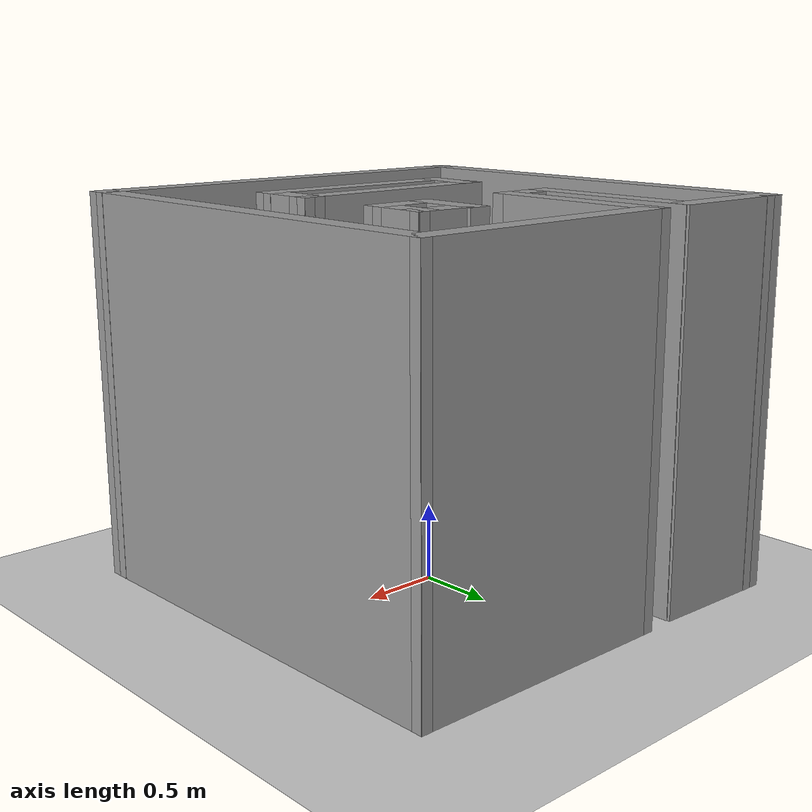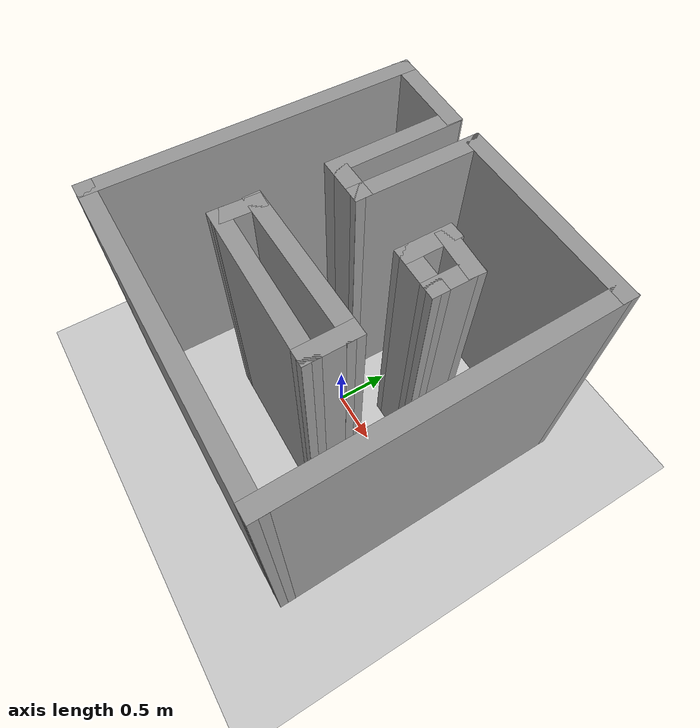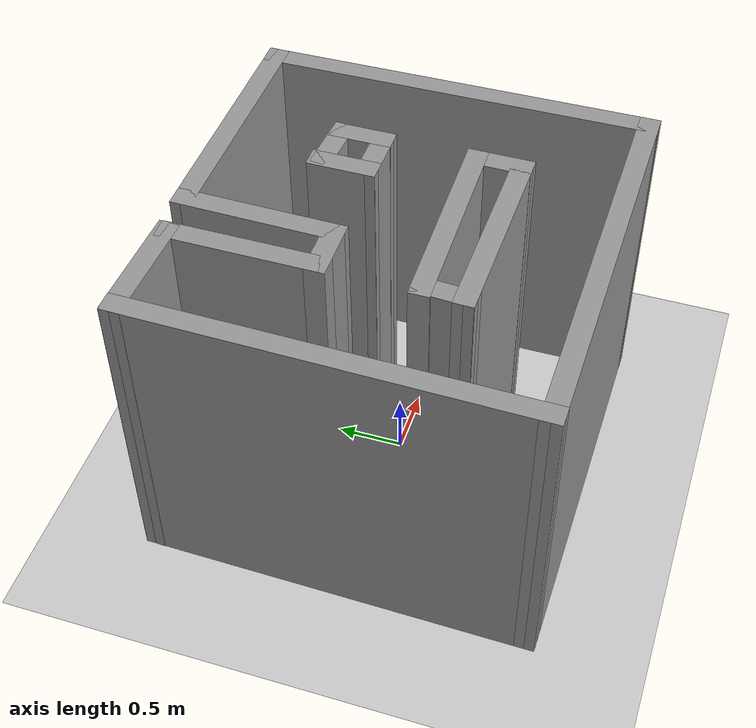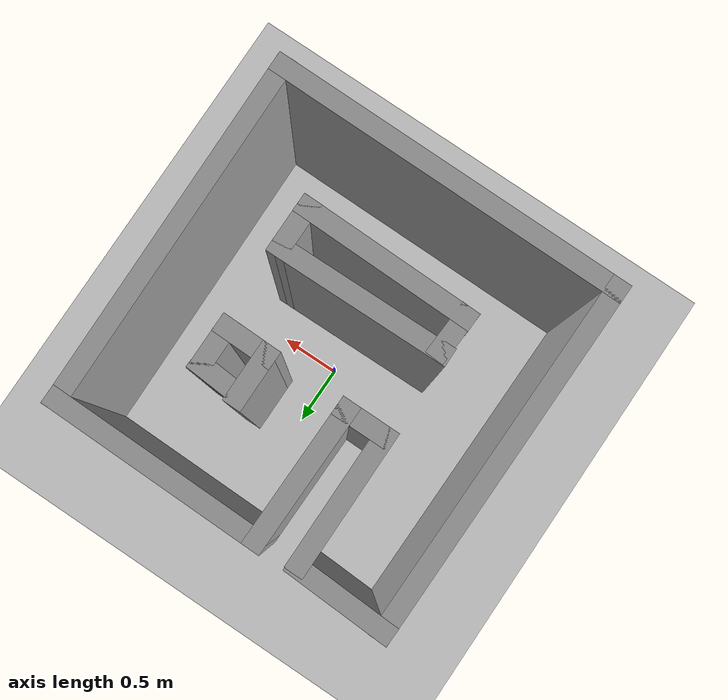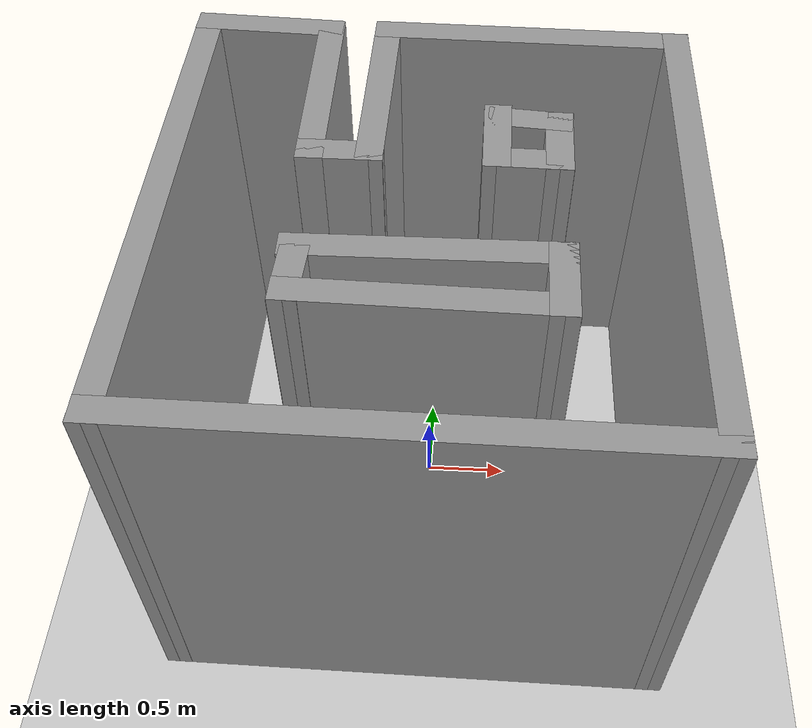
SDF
<?xml version="1.0" ?>

<sdf version="1.5">
  <world name="default">
    <!-- A global light source -->
    <include>
      <uri>model://sun</uri>
    </include>

    <!-- A ground plane -->
    <include>
      <uri>model://ground_plane</uri>
    </include>

    <!-- Our custom model -->
    <include>
      <uri>model://campus_3</uri>
    </include>
  </world>
</sdf>

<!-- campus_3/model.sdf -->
<sdf version='1.6'>
  <model name='campus_3'>
    <pose frame=''>-0.020699 0.022637 0 0 -0 0</pose>
    <link name='Wall_0'>
      <collision name='Wall_0_Collision'>
        <geometry>
          <box>
            <size>1.19348 0.15 2.5</size>
          </box>
        </geometry>
        <pose frame=''>0 0 1.25 0 -0 0</pose>
      </collision>
      <visual name='Wall_0_Visual'>
        <pose frame=''>0 0 1.25 0 -0 0</pose>
        <geometry>
          <box>
            <size>1.19348 0.15 2.5</size>
          </box>
        </geometry>
        <material>
          <script>
            <uri>file://media/materials/scripts/gazebo.material</uri>
            <name>Gazebo/Grey</name>
          </script>
          <ambient>1 1 1 1</ambient>
        </material>
        <meta>
          <layer>0</layer>
        </meta>
      </visual>
      <pose frame=''>-0.638847 0.853299 0 0 -0 -1.5708</pose>
    </link>
    <link name='Wall_1'>
      <collision name='Wall_1_Collision'>
        <geometry>
          <box>
            <size>0.46794 0.15 2.5</size>
          </box>
        </geometry>
        <pose frame=''>0 0 1.25 0 -0 0</pose>
      </collision>
      <visual name='Wall_1_Visual'>
        <pose frame=''>0 0 1.25 0 -0 0</pose>
        <geometry>
          <box>
            <size>0.46794 0.15 2.5</size>
          </box>
        </geometry>
        <material>
          <script>
            <uri>file://media/materials/scripts/gazebo.material</uri>
            <name>Gazebo/Grey</name>
          </script>
          <ambient>1 1 1 1</ambient>
        </material>
        <meta>
          <layer>0</layer>
        </meta>
      </visual>
      <pose frame=''>-0.480057 0.33156 0 0 -0 0</pose>
    </link>
    <link name='Wall_10'>
      <collision name='Wall_10_Collision'>
        <geometry>
          <box>
            <size>1.48101 0.15 2.5</size>
          </box>
        </geometry>
        <pose frame=''>0 0 1.25 0 -0 0</pose>
      </collision>
      <visual name='Wall_10_Visual'>
        <pose frame=''>0 0 1.25 0 -0 0</pose>
        <geometry>
          <box>
            <size>1.48101 0.15 2.5</size>
          </box>
        </geometry>
        <material>
          <script>
            <uri>file://media/materials/scripts/gazebo.material</uri>
            <name>Gazebo/Grey</name>
          </script>
          <ambient>1 1 1 1</ambient>
        </material>
        <meta>
          <layer>0</layer>
        </meta>
      </visual>
      <pose frame=''>0.026559 -0.677892 0 0 -0 -0.017044</pose>
    </link>
    <link name='Wall_11'>
      <collision name='Wall_11_Collision'>
        <geometry>
          <box>
            <size>0.482703 0.15 2.5</size>
          </box>
        </geometry>
        <pose frame=''>0 0 1.25 0 -0 0</pose>
      </collision>
      <visual name='Wall_11_Visual'>
        <pose frame=''>0 0 1.25 0 -0 0</pose>
        <geometry>
          <box>
            <size>0.482703 0.15 2.5</size>
          </box>
        </geometry>
        <material>
          <script>
            <uri>file://media/materials/scripts/gazebo.material</uri>
            <name>Gazebo/Grey</name>
          </script>
          <ambient>1 1 1 1</ambient>
        </material>
        <meta>
          <layer>0</layer>
        </meta>
      </visual>
      <pose frame=''>0.691966 -0.522882 0 0 -0 1.5708</pose>
    </link>
    <link name='Wall_12'>
      <collision name='Wall_12_Collision'>
        <geometry>
          <box>
            <size>1.4809 0.15 2.5</size>
          </box>
        </geometry>
        <pose frame=''>0 0 1.25 0 -0 0</pose>
      </collision>
      <visual name='Wall_12_Visual'>
        <pose frame=''>0 0 1.25 0 -0 0</pose>
        <geometry>
          <box>
            <size>1.4809 0.15 2.5</size>
          </box>
        </geometry>
        <material>
          <script>
            <uri>file://media/materials/scripts/gazebo.material</uri>
            <name>Gazebo/Grey</name>
          </script>
          <ambient>1 1 1 1</ambient>
        </material>
        <meta>
          <layer>0</layer>
        </meta>
      </visual>
      <pose frame=''>0.026559 -0.364092 0 0 -0 -3.13023</pose>
    </link>
    <link name='Wall_14'>
      <collision name='Wall_14_Collision'>
        <geometry>
          <box>
            <size>0.5 0.15 2.5</size>
          </box>
        </geometry>
        <pose frame=''>0 0 1.25 0 -0 0</pose>
      </collision>
      <visual name='Wall_14_Visual'>
        <pose frame=''>0 0 1.25 0 -0 0</pose>
        <geometry>
          <box>
            <size>0.5 0.15 2.5</size>
          </box>
        </geometry>
        <material>
          <script>
            <uri>file://media/materials/scripts/gazebo.material</uri>
            <name>Gazebo/Grey</name>
          </script>
          <ambient>1 1 1 1</ambient>
        </material>
        <meta>
          <layer>0</layer>
        </meta>
      </visual>
      <pose frame=''>0.351701 0.496825 0 0 -0 -1.5708</pose>
    </link>
    <link name='Wall_15'>
      <collision name='Wall_15_Collision'>
        <geometry>
          <box>
            <size>0.482747 0.15 2.5</size>
          </box>
        </geometry>
        <pose frame=''>0 0 1.25 0 -0 0</pose>
      </collision>
      <visual name='Wall_15_Visual'>
        <pose frame=''>0 0 1.25 0 -0 0</pose>
        <geometry>
          <box>
            <size>0.482747 0.15 2.5</size>
          </box>
        </geometry>
        <material>
          <script>
            <uri>file://media/materials/scripts/gazebo.material</uri>
            <name>Gazebo/Grey</name>
          </script>
          <ambient>1 1 1 1</ambient>
        </material>
        <meta>
          <layer>0</layer>
        </meta>
      </visual>
      <pose frame=''>0.518053 0.319131 0 0 -0 -0.016192</pose>
    </link>
    <link name='Wall_16'>
      <collision name='Wall_16_Collision'>
        <geometry>
          <box>
            <size>0.460019 0.15 2.5</size>
          </box>
        </geometry>
        <pose frame=''>0 0 1.25 0 -0 0</pose>
      </collision>
      <visual name='Wall_16_Visual'>
        <pose frame=''>0 0 1.25 0 -0 0</pose>
        <geometry>
          <box>
            <size>0.460019 0.15 2.5</size>
          </box>
        </geometry>
        <material>
          <script>
            <uri>file://media/materials/scripts/gazebo.material</uri>
            <name>Gazebo/Grey</name>
          </script>
          <ambient>1 1 1 1</ambient>
        </material>
        <meta>
          <layer>0</layer>
        </meta>
      </visual>
      <pose frame=''>0.684404 0.471446 0 0 -0 1.5708</pose>
    </link>
    <link name='Wall_17'>
      <collision name='Wall_17_Collision'>
        <geometry>
          <box>
            <size>0.460848 0.15 2.5</size>
          </box>
        </geometry>
        <pose frame=''>0 0 1.25 0 -0 0</pose>
      </collision>
      <visual name='Wall_17_Visual'>
        <pose frame=''>0 0 1.25 0 -0 0</pose>
        <geometry>
          <box>
            <size>0.460848 0.15 2.5</size>
          </box>
        </geometry>
        <material>
          <script>
            <uri>file://media/materials/scripts/gazebo.material</uri>
            <name>Gazebo/Grey</name>
          </script>
          <ambient>1 1 1 1</ambient>
        </material>
        <meta>
          <layer>0</layer>
        </meta>
      </visual>
      <pose frame=''>0.529395 0.637798 0 0 -0 3.06855</pose>
    </link>
    <link name='Wall_2'>
      <collision name='Wall_2_Collision'>
        <geometry>
          <box>
            <size>1.22383 0.15 2.5</size>
          </box>
        </geometry>
        <pose frame=''>0 0 1.25 0 -0 0</pose>
      </collision>
      <visual name='Wall_2_Visual'>
        <pose frame=''>0 0 1.25 0 -0 0</pose>
        <geometry>
          <box>
            <size>1.22383 0.15 2.5</size>
          </box>
        </geometry>
        <material>
          <script>
            <uri>file://media/materials/scripts/gazebo.material</uri>
            <name>Gazebo/Grey</name>
          </script>
          <ambient>1 1 1 1</ambient>
        </material>
        <meta>
          <layer>0</layer>
        </meta>
      </visual>
      <pose frame=''>-0.313705 0.868422 0 0 -0 1.55671</pose>
    </link>
    <link name='Wall_3'>
      <collision name='Wall_3_Collision'>
        <geometry>
          <box>
            <size>1.82879 0.15 2.5</size>
          </box>
        </geometry>
        <pose frame=''>0 0 1.25 0 -0 0</pose>
      </collision>
      <visual name='Wall_3_Visual'>
        <pose frame=''>0 0 1.25 0 -0 0</pose>
        <geometry>
          <box>
            <size>1.82879 0.15 2.5</size>
          </box>
        </geometry>
        <material>
          <script>
            <uri>file://media/materials/scripts/gazebo.material</uri>
            <name>Gazebo/Grey</name>
          </script>
          <ambient>1 1 1 1</ambient>
        </material>
        <meta>
          <layer>0</layer>
        </meta>
      </visual>
      <pose frame=''>0.533176 1.39394 0 0 -0 -0.013513</pose>
    </link>
    <link name='Wall_4'>
      <collision name='Wall_4_Collision'>
        <geometry>
          <box>
            <size>2.96302 0.15 2.5</size>
          </box>
        </geometry>
        <pose frame=''>0 0 1.25 0 -0 0</pose>
      </collision>
      <visual name='Wall_4_Visual'>
        <pose frame=''>0 0 1.25 0 -0 0</pose>
        <geometry>
          <box>
            <size>2.96302 0.15 2.5</size>
          </box>
        </geometry>
        <material>
          <script>
            <uri>file://media/materials/scripts/gazebo.material</uri>
            <name>Gazebo/Grey</name>
          </script>
          <ambient>1 1 1 1</ambient>
        </material>
        <meta>
          <layer>0</layer>
        </meta>
      </visual>
      <pose frame=''>1.38762 -0.023828 0 0 -0 -1.56004</pose>
    </link>
    <link name='Wall_5'>
      <collision name='Wall_5_Collision'>
        <geometry>
          <box>
            <size>2.95533 0.15 2.5</size>
          </box>
        </geometry>
        <pose frame=''>0 0 1.25 0 -0 0</pose>
      </collision>
      <visual name='Wall_5_Visual'>
        <pose frame=''>0 0 1.25 0 -0 0</pose>
        <geometry>
          <box>
            <size>2.95533 0.15 2.5</size>
          </box>
        </geometry>
        <material>
          <script>
            <uri>file://media/materials/scripts/gazebo.material</uri>
            <name>Gazebo/Grey</name>
          </script>
          <ambient>1 1 1 1</ambient>
        </material>
        <meta>
          <layer>0</layer>
        </meta>
      </visual>
      <pose frame=''>9.4e-05 -1.42269 0 0 -0 3.1362</pose>
    </link>
    <link name='Wall_6'>
      <collision name='Wall_6_Collision'>
        <geometry>
          <box>
            <size>2.99335 0.15 2.5</size>
          </box>
        </geometry>
        <pose frame=''>0 0 1.25 0 -0 0</pose>
      </collision>
      <visual name='Wall_6_Visual'>
        <pose frame=''>0 0 1.25 0 -0 0</pose>
        <geometry>
          <box>
            <size>2.99335 0.15 2.5</size>
          </box>
        </geometry>
        <material>
          <script>
            <uri>file://media/materials/scripts/gazebo.material</uri>
            <name>Gazebo/Grey</name>
          </script>
          <ambient>1 1 1 1</ambient>
        </material>
        <meta>
          <layer>0</layer>
        </meta>
      </visual>
      <pose frame=''>-1.38365 0.006418 0 0 -0 1.5575</pose>
    </link>
    <link name='Wall_7'>
      <collision name='Wall_7_Collision'>
        <geometry>
          <box>
            <size>0.868973 0.15 2.5</size>
          </box>
        </geometry>
        <pose frame=''>0 0 1.25 0 -0 0</pose>
      </collision>
      <visual name='Wall_7_Visual'>
        <pose frame=''>0 0 1.25 0 -0 0</pose>
        <geometry>
          <box>
            <size>0.868973 0.15 2.5</size>
          </box>
        </geometry>
        <material>
          <script>
            <uri>file://media/materials/scripts/gazebo.material</uri>
            <name>Gazebo/Grey</name>
          </script>
          <ambient>1 1 1 1</ambient>
        </material>
        <meta>
          <layer>0</layer>
        </meta>
      </visual>
      <pose frame=''>-1.00558 1.41284 0 0 -0 -0.04208</pose>
    </link>
    <link name='Wall_9'>
      <collision name='Wall_9_Collision'>
        <geometry>
          <box>
            <size>0.437434 0.15 2.5</size>
          </box>
        </geometry>
        <pose frame=''>0 0 1.25 0 -0 0</pose>
      </collision>
      <visual name='Wall_9_Visual'>
        <pose frame=''>0 0 1.25 0 -0 0</pose>
        <geometry>
          <box>
            <size>0.437434 0.15 2.5</size>
          </box>
        </geometry>
        <material>
          <script>
            <uri>file://media/materials/scripts/gazebo.material</uri>
            <name>Gazebo/Grey</name>
          </script>
          <ambient>1 1 1 1</ambient>
        </material>
        <meta>
          <layer>0</layer>
        </meta>
      </visual>
      <pose frame=''>-0.631286 -0.522882 0 0 -0 -1.62338</pose>
    </link>
    <static>1</static>
  </model>
</sdf>
